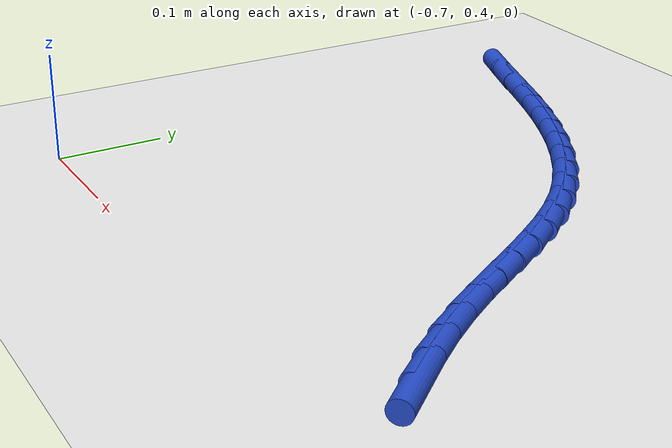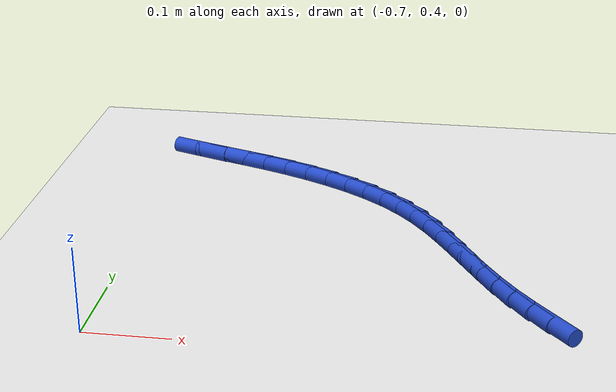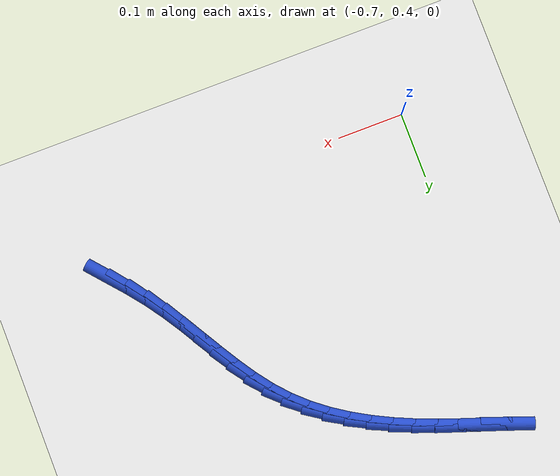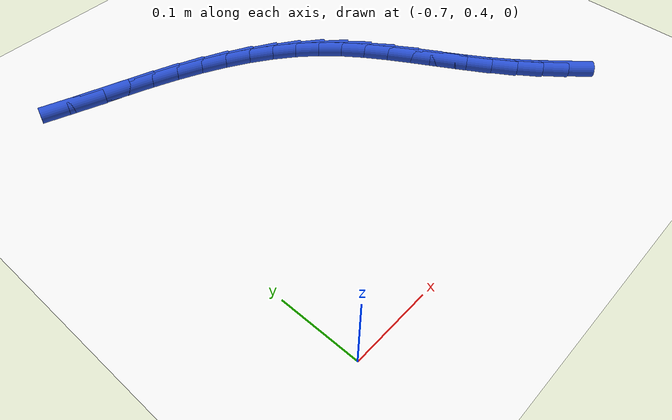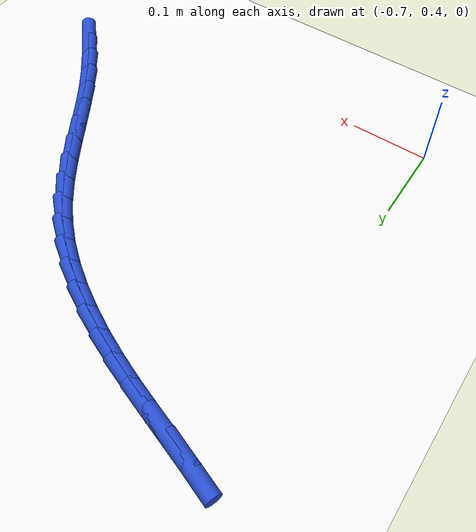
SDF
<sdf version="1.6">
 <world name="default">
  <model name="ground_plane">
   <static>1</static>
   <link name="link">
    <collision name="collision">
     <geometry><plane><normal>0 0 1</normal><size>100 100</size></plane></geometry>
     <surface><friction><ode><mu>100</mu><mu2>50</mu2></ode></friction></surface>
    </collision>
    <visual name="visual">
     <cast_shadows>0</cast_shadows>
     <geometry><plane><normal>0 0 1</normal><size>100 100</size></plane></geometry>
     <material>
      <script><uri>file://media/materials/scripts/gazebo.material</uri><name>Gazebo/WhiteGlow</name></script>
     </material>
    </visual>
   </link>
  </model>
  <model name="line">
   <link name="link_17">
    <pose>-0.20904348692506347 0.47526906912666445 0.01 0 1.57 -0.8621365686876414</pose>
    <collision name="collision">
     <geometry><cylinder><radius>0.01</radius><length>0.08</length></cylinder></geometry>
    </collision>
    <visual name="visual">
     <material>
      <script><name>Gazebo/Blue</name><uri>file://media/materials/scripts/gazebo.material</uri></script>
     </material>
     <geometry><cylinder><radius>0.01</radius><length>0.08</length></cylinder></geometry>
    </visual>
   </link>
   <link name="link_18">
    <pose>-0.2302498105518508 0.5000081034307984 0.01 0 1.57 -0.902919579062575</pose>
    <collision name="collision">
     <geometry><cylinder><radius>0.01</radius><length>0.08</length></cylinder></geometry>
    </collision>
    <visual name="visual">
     <material>
      <script><name>Gazebo/Blue</name><uri>file://media/materials/scripts/gazebo.material</uri></script>
     </material>
     <geometry><cylinder><radius>0.01</radius><length>0.08</length></cylinder></geometry>
    </visual>
   </link>
   <link name="link_19">
    <pose>-0.25037321200670615 0.525519384794454 0.01 0 1.57 -0.9562740191444623</pose>
    <collision name="collision">
     <geometry><cylinder><radius>0.01</radius><length>0.08</length></cylinder></geometry>
    </collision>
    <visual name="visual">
     <material>
      <script><name>Gazebo/Blue</name><uri>file://media/materials/scripts/gazebo.material</uri></script>
     </material>
     <geometry><cylinder><radius>0.01</radius><length>0.08</length></cylinder></geometry>
    </visual>
   </link>
   <link name="link_20">
    <pose>-0.269058239736302 0.5519977443954881 0.01 0 1.57 -1.0041918876763616</pose>
    <collision name="collision">
     <geometry><cylinder><radius>0.01</radius><length>0.08</length></cylinder></geometry>
    </collision>
    <visual name="visual">
     <material>
      <script><name>Gazebo/Blue</name><uri>file://media/materials/scripts/gazebo.material</uri></script>
     </material>
     <geometry><cylinder><radius>0.01</radius><length>0.08</length></cylinder></geometry>
    </visual>
   </link>
   <link name="link_21">
    <pose>-0.28642684535137025 0.5792987879300152 0.01 0 1.57 -1.0316755540721156</pose>
    <collision name="collision">
     <geometry><cylinder><radius>0.01</radius><length>0.08</length></cylinder></geometry>
    </collision>
    <visual name="visual">
     <material>
      <script><name>Gazebo/Blue</name><uri>file://media/materials/scripts/gazebo.material</uri></script>
     </material>
     <geometry><cylinder><radius>0.01</radius><length>0.08</length></cylinder></geometry>
    </visual>
   </link>
   <link name="link_22">
    <pose>-0.30299680560455344 0.6069968620146992 0.01 0 1.57 -1.038269429202816</pose>
    <collision name="collision">
     <geometry><cylinder><radius>0.01</radius><length>0.08</length></cylinder></geometry>
    </collision>
    <visual name="visual">
     <material>
      <script><name>Gazebo/Blue</name><uri>file://media/materials/scripts/gazebo.material</uri></script>
     </material>
     <geometry><cylinder><radius>0.01</radius><length>0.08</length></cylinder></geometry>
    </visual>
   </link>
   <link name="link_23">
    <pose>-0.3192978589450694 0.6346578137157438 0.01 0 1.57 -1.0236949873662207</pose>
    <collision name="collision">
     <geometry><cylinder><radius>0.01</radius><length>0.08</length></cylinder></geometry>
    </collision>
    <visual name="visual">
     <material>
      <script><name>Gazebo/Blue</name><uri>file://media/materials/scripts/gazebo.material</uri></script>
     </material>
     <geometry><cylinder><radius>0.01</radius><length>0.08</length></cylinder></geometry>
    </visual>
   </link>
   <link name="link_24">
    <pose>-0.3358597438221362 0.6618474900993521 0.01 0 1.57 -0.9872947692441345</pose>
    <collision name="collision">
     <geometry><cylinder><radius>0.01</radius><length>0.08</length></cylinder></geometry>
    </collision>
    <visual name="visual">
     <material>
      <script><name>Gazebo/Blue</name><uri>file://media/materials/scripts/gazebo.material</uri></script>
     </material>
     <geometry><cylinder><radius>0.01</radius><length>0.08</length></cylinder></geometry>
    </visual>
   </link>
   <link name="link_25">
    <pose>-0.3532121986849716 0.688131738231727 0.01 0 1.57 -0.9282127430467669</pose>
    <collision name="collision">
     <geometry><cylinder><radius>0.01</radius><length>0.08</length></cylinder></geometry>
    </collision>
    <visual name="visual">
     <material>
      <script><name>Gazebo/Blue</name><uri>file://media/materials/scripts/gazebo.material</uri></script>
     </material>
     <geometry><cylinder><radius>0.01</radius><length>0.08</length></cylinder></geometry>
    </visual>
   </link>
   <link name="link_26">
    <pose>-0.37188496198279364 0.7130764051790719 0.01 0 1.57 -0.8460910870579929</pose>
    <collision name="collision">
     <geometry><cylinder><radius>0.01</radius><length>0.08</length></cylinder></geometry>
    </collision>
    <visual name="visual">
     <material>
      <script><name>Gazebo/Blue</name><uri>file://media/materials/scripts/gazebo.material</uri></script>
     </material>
     <geometry><cylinder><radius>0.01</radius><length>0.08</length></cylinder></geometry>
    </visual>
   </link>
   <link name="link_27">
    <pose>-0.3924038790254911 0.7362504359200281 0.01 0 1.57 -0.7524700737849487</pose>
    <collision name="collision">
     <geometry><cylinder><radius>0.01</radius><length>0.08</length></cylinder></geometry>
    </collision>
    <visual name="visual">
     <material>
      <script><name>Gazebo/Blue</name><uri>file://media/materials/scripts/gazebo.material</uri></script>
     </material>
     <geometry><cylinder><radius>0.01</radius><length>0.08</length></cylinder></geometry>
    </visual>
   </link>
   <link name="link_28">
    <pose>-0.4150299996812504 0.7574334827887017 0.01 0 1.57 -0.6662824770688995</pose>
    <collision name="collision">
     <geometry><cylinder><radius>0.01</radius><length>0.08</length></cylinder></geometry>
    </collision>
    <visual name="visual">
     <material>
      <script><name>Gazebo/Blue</name><uri>file://media/materials/scripts/gazebo.material</uri></script>
     </material>
     <geometry><cylinder><radius>0.01</radius><length>0.08</length></cylinder></geometry>
    </visual>
   </link>
   <link name="link_29">
    <pose>-0.4395949139577021 0.7767469349365453 0.01 0 1.57 -0.589732814284087</pose>
    <collision name="collision">
     <geometry><cylinder><radius>0.01</radius><length>0.08</length></cylinder></geometry>
    </collision>
    <visual name="visual">
     <material>
      <script><name>Gazebo/Blue</name><uri>file://media/materials/scripts/gazebo.material</uri></script>
     </material>
     <geometry><cylinder><radius>0.01</radius><length>0.08</length></cylinder></geometry>
    </visual>
   </link>
   <link name="link_30">
    <pose>-0.46589095214302206 0.7943434219004566 0.01 0 1.57 -0.5228047211377633</pose>
    <collision name="collision">
     <geometry><cylinder><radius>0.01</radius><length>0.08</length></cylinder></geometry>
    </collision>
    <visual name="visual">
     <material>
      <script><name>Gazebo/Blue</name><uri>file://media/materials/scripts/gazebo.material</uri></script>
     </material>
     <geometry><cylinder><radius>0.01</radius><length>0.08</length></cylinder></geometry>
    </visual>
   </link>
   <link name="link_31">
    <pose>-0.49371044452538637 0.8103755732173324 0.01 0 1.57 -0.46509653237290854</pose>
    <collision name="collision">
     <geometry><cylinder><radius>0.01</radius><length>0.08</length></cylinder></geometry>
    </collision>
    <visual name="visual">
     <material>
      <script><name>Gazebo/Blue</name><uri>file://media/materials/scripts/gazebo.material</uri></script>
     </material>
     <geometry><cylinder><radius>0.01</radius><length>0.08</length></cylinder></geometry>
    </visual>
   </link>
   <link name="link_32">
    <pose>-0.5228457213929708 0.8249960184240699 0.01 0 1.57 -0.4160094403022977</pose>
    <collision name="collision">
     <geometry><cylinder><radius>0.01</radius><length>0.08</length></cylinder></geometry>
    </collision>
    <visual name="visual">
     <material>
      <script><name>Gazebo/Blue</name><uri>file://media/materials/scripts/gazebo.material</uri></script>
     </material>
     <geometry><cylinder><radius>0.01</radius><length>0.08</length></cylinder></geometry>
    </visual>
   </link>
   <link name="link_33">
    <pose>-0.5530891130339515 0.838357387057566 0.01 0 1.57 -0.3748960228453026</pose>
    <collision name="collision">
     <geometry><cylinder><radius>0.01</radius><length>0.08</length></cylinder></geometry>
    </collision>
    <visual name="visual">
     <material>
      <script><name>Gazebo/Blue</name><uri>file://media/materials/scripts/gazebo.material</uri></script>
     </material>
     <geometry><cylinder><radius>0.01</radius><length>0.08</length></cylinder></geometry>
    </visual>
   </link>
   <link name="link_34">
    <pose>-0.584232723520706 0.850612600007954 0.01 0 1.57 -0.3438564441189873</pose>
    <collision name="collision">
     <geometry><cylinder><radius>0.01</radius><length>0.08</length></cylinder></geometry>
    </collision>
    <visual name="visual">
     <material>
      <script><name>Gazebo/Blue</name><uri>file://media/materials/scripts/gazebo.material</uri></script>
     </material>
     <geometry><cylinder><radius>0.01</radius><length>0.08</length></cylinder></geometry>
    </visual>
   </link>
   <link name="link_35">
    <pose>-0.616009185774971 0.8619911736653764 0.01 0 1.57 -0.32855671468374964</pose>
    <collision name="collision">
     <geometry><cylinder><radius>0.01</radius><length>0.08</length></cylinder></geometry>
    </collision>
    <visual name="visual">
     <material>
      <script><name>Gazebo/Blue</name><uri>file://media/materials/scripts/gazebo.material</uri></script>
     </material>
     <geometry><cylinder><radius>0.01</radius><length>0.08</length></cylinder></geometry>
    </visual>
   </link>
   <link name="link_36">
    <pose>-0.6480122879130841 0.8729014487268673 0.01 0 1.57 -0.3294994629025114</pose>
    <collision name="collision">
     <geometry><cylinder><radius>0.01</radius><length>0.08</length></cylinder></geometry>
    </collision>
    <visual name="visual">
     <material>
      <script><name>Gazebo/Blue</name><uri>file://media/materials/scripts/gazebo.material</uri></script>
     </material>
     <geometry><cylinder><radius>0.01</radius><length>0.08</length></cylinder></geometry>
    </visual>
   </link>
   <link name="link_37">
    <pose>-0.6798160386413575 0.8837772406580571 0.01 0 1.57 -0.34699999095266437</pose>
    <collision name="collision">
     <geometry><cylinder><radius>0.01</radius><length>0.08</length></cylinder></geometry>
    </collision>
    <visual name="visual">
     <material>
      <script><name>Gazebo/Blue</name><uri>file://media/materials/scripts/gazebo.material</uri></script>
     </material>
     <geometry><cylinder><radius>0.01</radius><length>0.08</length></cylinder></geometry>
    </visual>
   </link>
  </model>
 </world>
</sdf>
